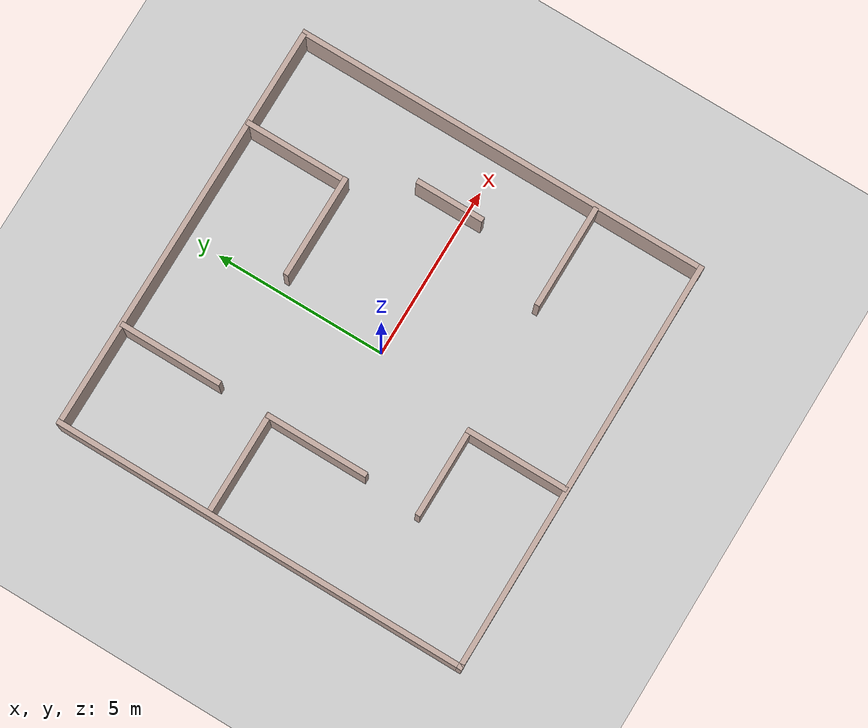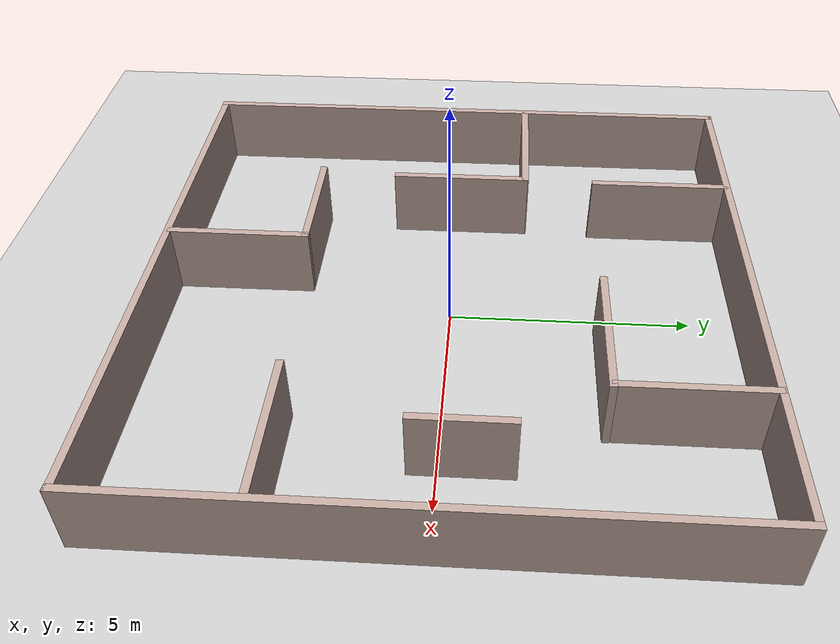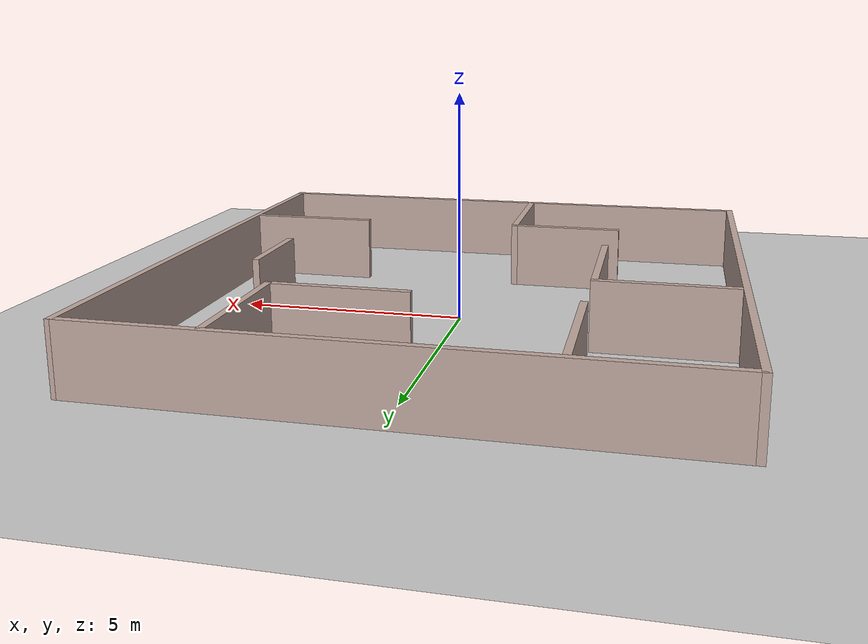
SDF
<?xml version="1.0" ?>

<sdf version="1.5">
	<world name="hideandseek">
    <gui>
      <camera name= "user_camera">
        <pose>17.074495 0.061547 31.817404 -0.000001 1.017409 3.131120</pose>
      </camera>
    </gui>
    <light name='sun' type='directional'>
      <cast_shadows>1</cast_shadows>
      <pose frame=''>0 0 10 0 -0 0</pose>
      <diffuse>0.8 0.8 0.8 1</diffuse>
      <specular>0.2 0.2 0.2 1</specular>
      <attenuation>
        <range>1000</range>
        <constant>0.9</constant>
        <linear>0.01</linear>
        <quadratic>0.001</quadratic>
      </attenuation>
      <direction>-0.5 0.1 -0.9</direction>
    </light>
    <model name='ground_plane'>
      <static>1</static>
      <link name='link'>
        <collision name='collision'>
          <geometry>
            <plane>
              <normal>0 0 1</normal>
              <size>30 30</size>
            </plane>
          </geometry>
          <surface>
            <contact>
              <collide_bitmask>65535</collide_bitmask>
              <ode/>
            </contact>
            <friction>
              <ode>
                <mu>100</mu>
                <mu2>50</mu2>
              </ode>
              <torsional>
                <ode/>
              </torsional>
            </friction>
            <bounce/>
          </surface>
          <max_contacts>10</max_contacts>
        </collision>
        <visual name='visual'>
          <cast_shadows>0</cast_shadows>
          <geometry>
            <plane>
              <normal>0 0 1</normal>
              <size>30 30</size>
            </plane>
          </geometry>
          <material>
            <script>
              <uri>file://media/materials/scripts/gazebo.material</uri>
              <name>Gazebo/Grey</name>
            </script>
          </material>
        </visual>
        <self_collide>0</self_collide>
        <enable_wind>0</enable_wind>
        <kinematic>0</kinematic>
      </link>
    </model>
    <gravity>0 0 -9.8</gravity>
    <magnetic_field>6e-06 2.3e-05 -4.2e-05</magnetic_field>
    <atmosphere type='adiabatic'/>
    <physics name='default_physics' default='0' type='ode'>
      <max_step_size>0.001</max_step_size>
      <real_time_factor>1</real_time_factor>
      <real_time_update_rate>1000</real_time_update_rate>
    </physics>
    <scene>
    Ogre::MovableText* msg = new Ogre::MovableText("TXT_001", "this is the caption");
msg->setTextAlignment(Ogre::MovableText::H_CENTER, Ogre::MovableText::V_ABOVE); // Center horizontally and display above the node
/* msg->setAdditionalHeight( 2.0f ); //msg->setAdditionalHeight( ei.getRadius() ) // apparently not needed from 1.7*/
mNode->attachObject(msg);
      <ambient>0.760784 0.662745 0.627451 1</ambient>
      <background>0. 0.2 0.4 1</background>
      <shadows>1</shadows>
    </scene>
    <audio>
      <device>default</device>
    </audio>
    <wind/>
    <spherical_coordinates>
      <surface_model>EARTH_WGS84</surface_model>
      <latitude_deg>0</latitude_deg>
      <longitude_deg>0</longitude_deg>
      <elevation>0</elevation>
      <heading_deg>0</heading_deg>
    </spherical_coordinates>
    <model name='hideandseekworld'>
      <pose frame=''>0 1.54117 0 0 -0 0</pose>
      <link name='Wall_19'>
        <collision name='Wall_19_Collision'>
          <geometry>
            <box>
              <size>12.15 0.15 1.5</size>
            </box>
          </geometry>
          <pose frame=''>0 0 0.75 0 -0 0</pose>
        </collision>
        <visual name='Wall_19_Visual'>
          <pose frame=''>0 0 0.75 0 -0 0</pose>
          <geometry>
            <box>
              <size>12.15 0.15 1.5</size>
            </box>
          </geometry>
          <material>
            <script>
              <uri>file://media/materials/scripts/gazebo.material</uri>
              <name>Gazebo/Grey</name>
            </script>
            <ambient>0.760784 0.662745 0.627451 1</ambient>
          </material>
          <meta>
            <layer>0</layer>
          </meta>
        </visual>
        <pose frame=''>-6 -1.54117 0 0 -0 1.5708</pose>
      </link>
      <link name='Wall_21'>
        <collision name='Wall_21_Collision'>
          <geometry>
            <box>
              <size>12.15 0.15 1.5</size>
            </box>
          </geometry>
          <pose frame=''>0 0 0.75 0 -0 0</pose>
        </collision>
        <visual name='Wall_21_Visual'>
          <pose frame=''>0 0 0.75 0 -0 0</pose>
          <geometry>
            <box>
              <size>12.15 0.15 1.5</size>
            </box>
          </geometry>
          <material>
            <script>
              <uri>file://media/materials/scripts/gazebo.material</uri>
              <name>Gazebo/Grey</name>
            </script>
            <ambient>0.760784 0.662745 0.627451 1</ambient>
          </material>
          <meta>
            <layer>0</layer>
          </meta>
        </visual>
        <pose frame=''>0 -7.53117 0 0 -0 0</pose>
      </link>
      <link name='Wall_23'>
        <collision name='Wall_23_Collision'>
          <geometry>
            <box>
              <size>12.15 0.15 1.5</size>
            </box>
          </geometry>
          <pose frame=''>0 0 0.75 0 -0 0</pose>
        </collision>
        <visual name='Wall_23_Visual'>
          <pose frame=''>0 0 0.75 0 -0 0</pose>
          <geometry>
            <box>
              <size>12.15 0.15 1.5</size>
            </box>
          </geometry>
          <material>
            <script>
              <uri>file://media/materials/scripts/gazebo.material</uri>
              <name>Gazebo/Grey</name>
            </script>
            <ambient>0.760784 0.662745 0.627451 1</ambient>
          </material>
          <meta>
            <layer>0</layer>
          </meta>
        </visual>
        <pose frame=''>6 -1.54117 0 0 -0 1.5708</pose>
      </link>
      <link name='Wall_25'>
        <collision name='Wall_25_Collision'>
          <geometry>
            <box>
              <size>12 0.15 1.5</size>
            </box>
          </geometry>
          <pose frame=''>0 0 0.75 0 -0 0</pose>
        </collision>
        <visual name='Wall_25_Visual'>
          <pose frame=''>0 0 0.75 0 -0 0</pose>
          <geometry>
            <box>
              <size>12 0.15 1.5</size>
            </box>
          </geometry>
          <material>
            <script>
              <uri>file://media/materials/scripts/gazebo.material</uri>
              <name>Gazebo/Grey</name>
            </script>
            <ambient>0.760784 0.662745 0.627451 1</ambient>
          </material>
          <meta>
            <layer>0</layer>
          </meta>
        </visual>
        <pose frame=''>-0.025 4.45883 0 0 -0 0</pose>
      </link>
      <link name='Wall_29'>
        <collision name='Wall_29_Collision'>
          <geometry>
            <box>
              <size>0.15 0.15 2.5</size>
            </box>
          </geometry>
          <pose frame=''>0 0 1.25 0 -0 0</pose>
        </collision>
        <pose frame=''>4.71667 7.54117 0 0 -0 0</pose>
      </link>
      <link name='Wall_31'>
        <collision name='Wall_31_Collision'>
          <geometry>
            <box>
              <size>3 0.15 1.5</size>
            </box>
          </geometry>
          <pose frame=''>0 0 0.75 0 -0 0</pose>
        </collision>
        <visual name='Wall_31_Visual'>
          <pose frame=''>0 0 0.75 0 -0 0</pose>
          <geometry>
            <box>
              <size>3 0.15 1.5</size>
            </box>
          </geometry>
          <material>
            <script>
              <uri>file://media/materials/scripts/gazebo.material</uri>
              <name>Gazebo/Grey</name>
            </script>
            <ambient>0.760784 0.662745 0.627451 1</ambient>
          </material>
          <meta>
            <layer>0</layer>
          </meta>
        </visual>
        <pose frame=''>-3.01 2.97383 0 0 -0 1.5708</pose>
      </link>
      <link name='Wall_33'>
        <collision name='Wall_33_Collision'>
          <geometry>
            <box>
              <size>3 0.15 1.5</size>
            </box>
          </geometry>
          <pose frame=''>0 0 0.75 0 -0 0</pose>
        </collision>
        <visual name='Wall_33_Visual'>
          <pose frame=''>0 0 0.75 0 -0 0</pose>
          <geometry>
            <box>
              <size>3 0.15 1.5</size>
            </box>
          </geometry>
          <material>
            <script>
              <uri>file://media/materials/scripts/gazebo.material</uri>
              <name>Gazebo/Grey</name>
            </script>
            <ambient>0.760784 0.662745 0.627451 1</ambient>
          </material>
          <meta>
            <layer>0</layer>
          </meta>
        </visual>
        <pose frame=''>1.775 1.52883 0 0 -0 0</pose>
      </link>
      <link name='Wall_35'>
        <collision name='Wall_35_Collision'>
          <geometry>
            <box>
              <size>3 0.15 1.5</size>
            </box>
          </geometry>
          <pose frame=''>0 0 0.75 0 -0 0</pose>
        </collision>
        <visual name='Wall_35_Visual'>
          <pose frame=''>0 0 0.75 0 -0 0</pose>
          <geometry>
            <box>
              <size>3 0.15 1.5</size>
            </box>
          </geometry>
          <material>
            <script>
              <uri>file://media/materials/scripts/gazebo.material</uri>
              <name>Gazebo/Grey</name>
            </script>
            <ambient>0.760784 0.662745 0.627451 1</ambient>
          </material>
          <meta>
            <layer>0</layer>
          </meta>
        </visual>
        <pose frame=''>3.19 3.00383 0 0 -0 1.5708</pose>
      </link>
      <link name='Wall_37'>
        <collision name='Wall_37_Collision'>
          <geometry>
            <box>
              <size>3 0.15 1.5</size>
            </box>
          </geometry>
          <pose frame=''>0 0 0.75 0 -0 0</pose>
        </collision>
        <visual name='Wall_37_Visual'>
          <pose frame=''>0 0 0.75 0 -0 0</pose>
          <geometry>
            <box>
              <size>3 0.15 1.5</size>
            </box>
          </geometry>
          <material>
            <script>
              <uri>file://media/materials/scripts/gazebo.material</uri>
              <name>Gazebo/Grey</name>
            </script>
            <ambient>0.760784 0.662745 0.627451 1</ambient>
          </material>
          <meta>
            <layer>0</layer>
          </meta>
        </visual>
        <pose frame=''>-4.495 -0.021171 0 0 -0 3.14159</pose>
      </link>
      <link name='Wall_40'>
        <collision name='Wall_40_Collision'>
          <geometry>
            <box>
              <size>3 0.15 1.5</size>
            </box>
          </geometry>
          <pose frame=''>0 0 0.75 0 -0 0</pose>
        </collision>
        <visual name='Wall_40_Visual'>
          <pose frame=''>0 0 0.75 0 -0 0</pose>
          <geometry>
            <box>
              <size>3 0.15 1.5</size>
            </box>
          </geometry>
          <material>
            <script>
              <uri>file://media/materials/scripts/gazebo.material</uri>
              <name>Gazebo/Grey</name>
            </script>
            <ambient>0.760784 0.662745 0.627451 1</ambient>
          </material>
          <meta>
            <layer>0</layer>
          </meta>
        </visual>
        <pose frame=''>-3.07 -1.46617 0 0 -0 -1.5708</pose>
      </link>
      <link name='Wall_42'>
        <collision name='Wall_42_Collision'>
          <geometry>
            <box>
              <size>2.62 0.15 1.5</size>
            </box>
          </geometry>
          <pose frame=''>0 0 0.75 0 -0 0</pose>
        </collision>
        <visual name='Wall_42_Visual'>
          <pose frame=''>0 0 0.75 0 -0 0</pose>
          <geometry>
            <box>
              <size>2.62 0.15 1.5</size>
            </box>
          </geometry>
          <material>
            <script>
              <uri>file://media/materials/scripts/gazebo.material</uri>
              <name>Gazebo/Grey</name>
            </script>
            <ambient>0.760784 0.662745 0.627451 1</ambient>
          </material>
          <meta>
            <layer>0</layer>
          </meta>
        </visual>
        <pose frame=''>-1.97 -4.61217 0 0 -0 3.14159</pose>
      </link>
      <link name='Wall_43'>
        <collision name='Wall_43_Collision'>
          <geometry>
            <box>
              <size>3 0.15 1.5</size>
            </box>
          </geometry>
          <pose frame=''>0 0 0.75 0 -0 0</pose>
        </collision>
        <visual name='Wall_43_Visual'>
          <pose frame=''>0 0 0.75 0 -0 0</pose>
          <geometry>
            <box>
              <size>3 0.15 1.5</size>
            </box>
          </geometry>
          <material>
            <script>
              <uri>file://media/materials/scripts/gazebo.material</uri>
              <name>Gazebo/Grey</name>
            </script>
            <ambient>0.760784 0.662745 0.627451 1</ambient>
          </material>
          <meta>
            <layer>0</layer>
          </meta>
        </visual>
        <pose frame=''>-0.735 -6.03717 0 0 -0 -1.5708</pose>
      </link>
      <link name='Wall_46'>
        <collision name='Wall_46_Collision'>
          <geometry>
            <box>
              <size>3 0.15 1.5</size>
            </box>
          </geometry>
          <pose frame=''>0 0 0.75 0 -0 0</pose>
        </collision>
        <visual name='Wall_46_Visual'>
          <pose frame=''>0 0 0.75 0 -0 0</pose>
          <geometry>
            <box>
              <size>3 0.15 1.5</size>
            </box>
          </geometry>
          <material>
            <script>
              <uri>file://media/materials/scripts/gazebo.material</uri>
              <name>Gazebo/Grey</name>
            </script>
            <ambient>0.760784 0.662745 0.627451 1</ambient>
          </material>
          <meta>
            <layer>0</layer>
          </meta>
        </visual>
        <pose frame=''>4.465 -4.42117 0 0 -0 0</pose>
      </link>
      <link name='Wall_48'>
        <collision name='Wall_48_Collision'>
          <geometry>
            <box>
              <size>2 0.15 1.5</size>
            </box>
          </geometry>
          <pose frame=''>0 0 0.75 0 -0 0</pose>
        </collision>
        <visual name='Wall_48_Visual'>
          <pose frame=''>0 0 0.75 0 -0 0</pose>
          <geometry>
            <box>
              <size>2 0.15 1.5</size>
            </box>
          </geometry>
          <material>
            <script>
              <uri>file://media/materials/scripts/gazebo.material</uri>
              <name>Gazebo/Grey</name>
            </script>
            <ambient>0.760784 0.662745 0.627451 1</ambient>
          </material>
          <meta>
            <layer>0</layer>
          </meta>
        </visual>
        <pose frame=''>4.16 -1.08617 0 0 -0 -1.5708</pose>
      </link>
      <static>1</static>
    </model>

	</world>
</sdf>
